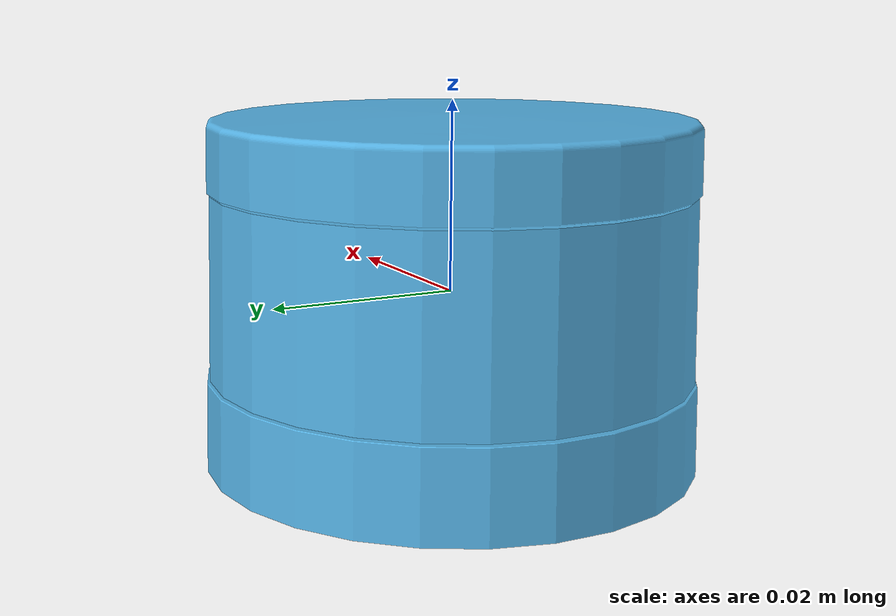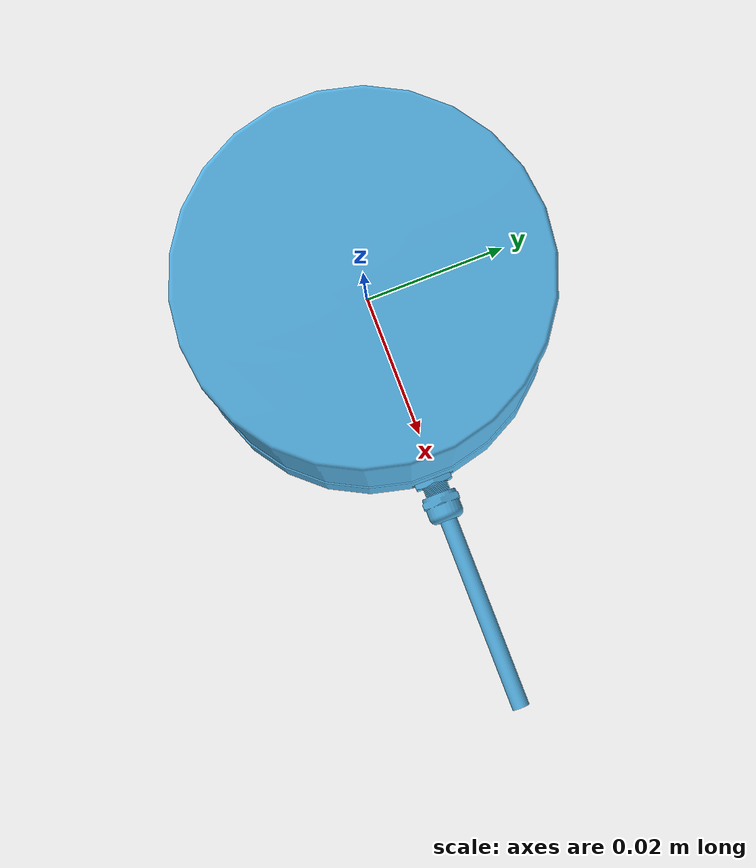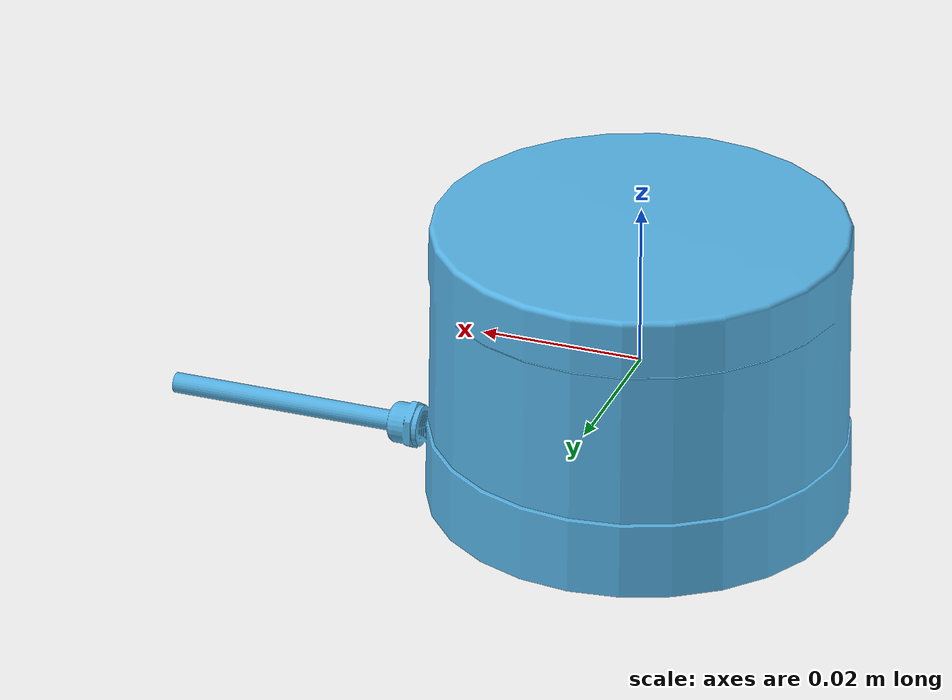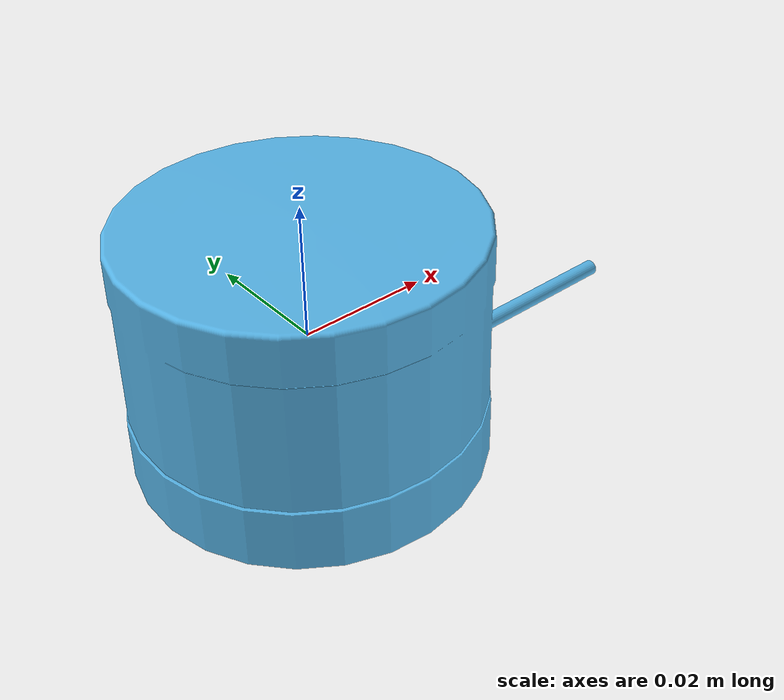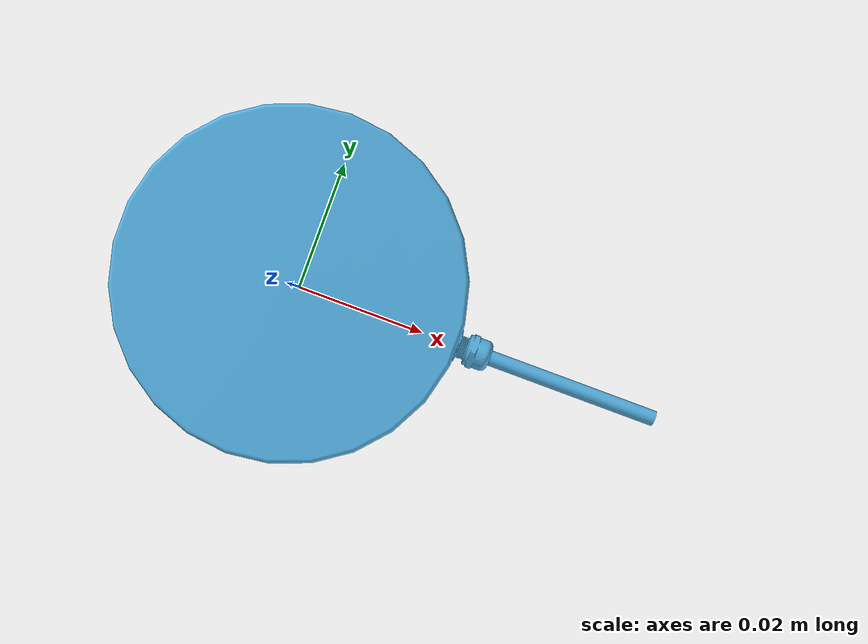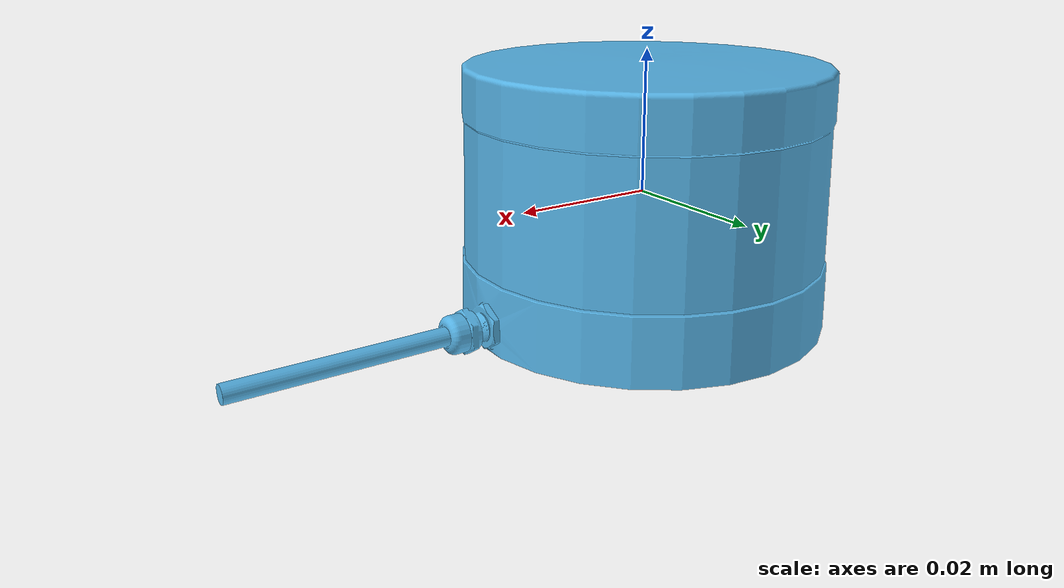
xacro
<?xml version="1.0" ?>
<robot name="vlp-16" xmlns:xacro="http://ros.org/wiki/xacro">

  <gazebo>
    <plugin name="velodyne_control" filename="/home/bir/Documents/workspaces_ros/learnboticsFull_ws/devel/lib/libvelodyne_plugin.so">
    </plugin>
  </gazebo>

  <!-- include the xacro files-->
  <gazebo reference="Lidar">
    <sensor type="ray" name="sensor">
      <pose>0 0 0 0 0 0</pose>
      <always_on>true</always_on>
      <visualize>true</visualize>
      <update_rate>30</update_rate>
      <ray>
        <scan>
          <horizontal>
            <samples>16</samples>
            <resolution>1</resolution>
            <min_angle>0</min_angle>
            <max_angle>6.28319</max_angle>
          </horizontal>
        </scan>
        <range>
          <min>0.0717</min>
          <max>10</max>
          <resolution>0.02</resolution>
        </range>
        <noise>
          <type>gaussian</type>
          <mean>0.0</mean>
          <stddev>0.02</stddev>
        </noise>
      </ray>
    </sensor>
  </gazebo>

  <link name="base_lidar">
    <inertial>
      <origin rpy="0 0 0" xyz="0 0 0"/>
      <mass value="0.1"/>
      <inertia ixx="0.000909131" iyy="0.000909131" izz="0.001107105" ixy="0" ixz="0" iyz="0"/>
    </inertial>
  </link>

  <link name="Lidar">
    <visual>
      <origin rpy="0 0 0" xyz="0 0 0"/>
      <geometry>
        <mesh filename="package://learnbotics/meshes/vlp16b.stl" scale="0.5 0.5 0.5"/>
      </geometry>
    </visual>
    <collision>
      <geometry>
          <mesh filename="package://learnbotics/meshes/vlp16b.stl" scale="0.5 0.5 0.5"/>
      </geometry>
    </collision>
    <inertial>
      <origin rpy="0 0 0" xyz="0 0 0"/>
      <mass value="0.1"/>
      <inertia ixx="0.000909131" iyy="0.000909131" izz="0.001107105" ixy="0" ixz="0" iyz="0"/>
    </inertial>
  </link>
  <joint name="Base_to_Lidar" type="revolute">
    <parent link="base_lidar"/>
    <child link="Lidar"/>
    <origin rpy="0 0 0" xyz="0 0 0"/>
    <axis xyz="0 0 1"/>
    <limit effort="-1" lower="-10000000000000000" upper="10000000000000000" velocity="10"/>
  </joint>
</robot>
